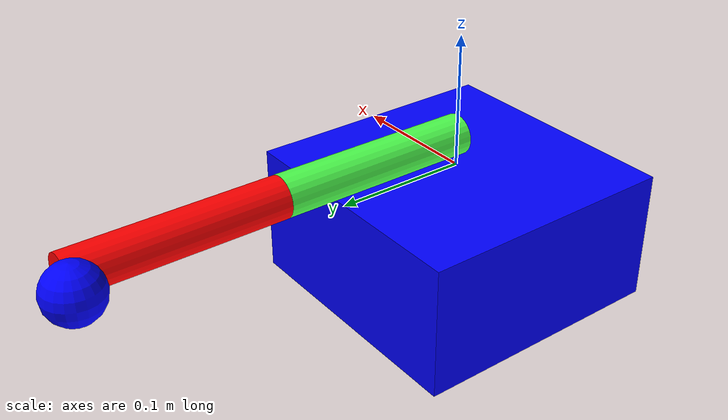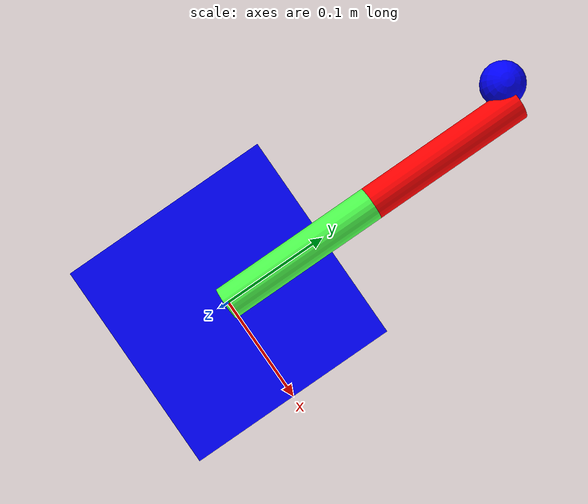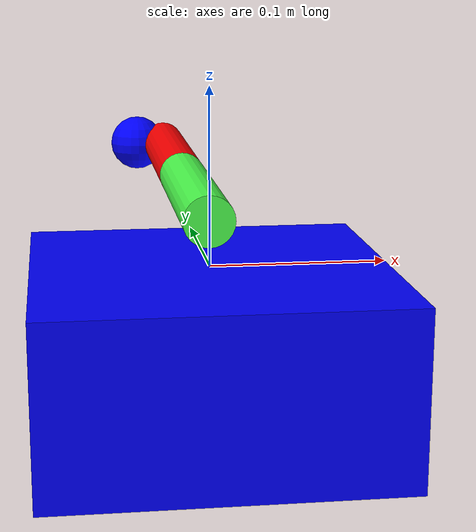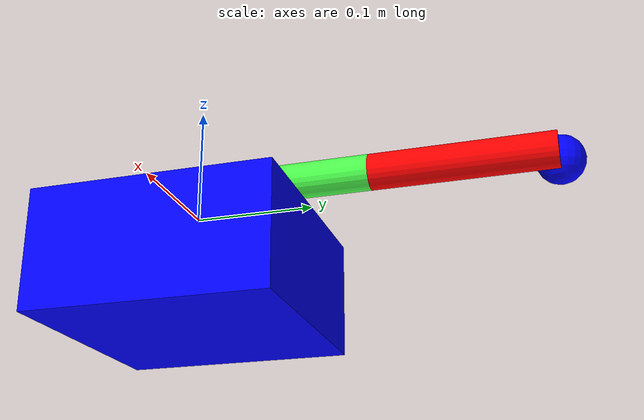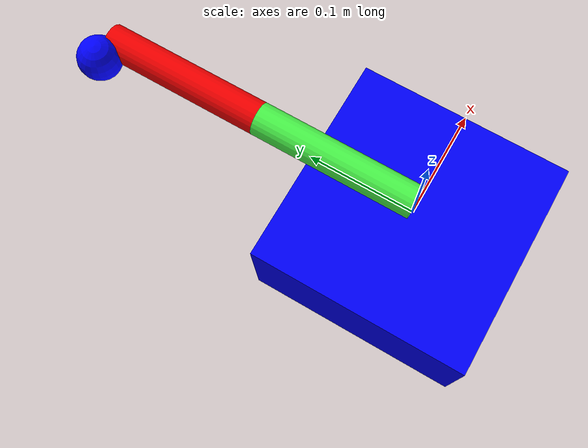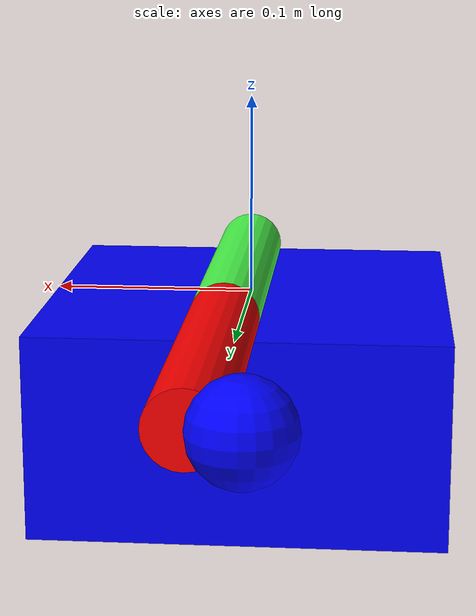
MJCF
<mujoco model="wheel_model">
    <compiler angle="radian" />
    <worldbody>
    <body>
    <body name="object">
    <body name="base" pos="0 0 -.05">
        <geom name="base" type="box" size=".1 .1 .05" pos="0 0 0" rgba="0 0 1 1" group="0"/>
    </body>

    <body name="link_1" pos="0 .15 .025">
        <geom name="wheel_base" rgba="0.3 1 0.3 1" size=".015 .075 .015" pos="0 -.075 0" euler="-1.57 0 0" type="cylinder" margin="0.001"
                group="0"
        />

        <geom name="wheel" rgba="1 0 0 1" size=".015 .075 .015"  pos="0 .075 0" euler="-1.57 0 0" type="cylinder" margin="0.001"
                group="0"
        />

        <joint name="hinge" type="hinge" pos="0 -.15 0" axis="0 0 1" damping="0.1" limited="true" range="0 2" />
        <site name="handle" pos="-.02 0.15 0" size="0.02" rgba="0 0 1 1" />
        </body>
    </body>
    <site name="bottom_site" pos="0 0 -0.3" rgba="0 0 0 0" size="0.005"/>
    <site name="top_site" pos="0 0 0.3" rgba="0 0 0 0" size="0.005"/>
    <site name="horizontal_radius_site" pos="0.3 0 0" rgba="0 0 0 0" size="0.1"/>
    </body>
    </worldbody>
</mujoco>
